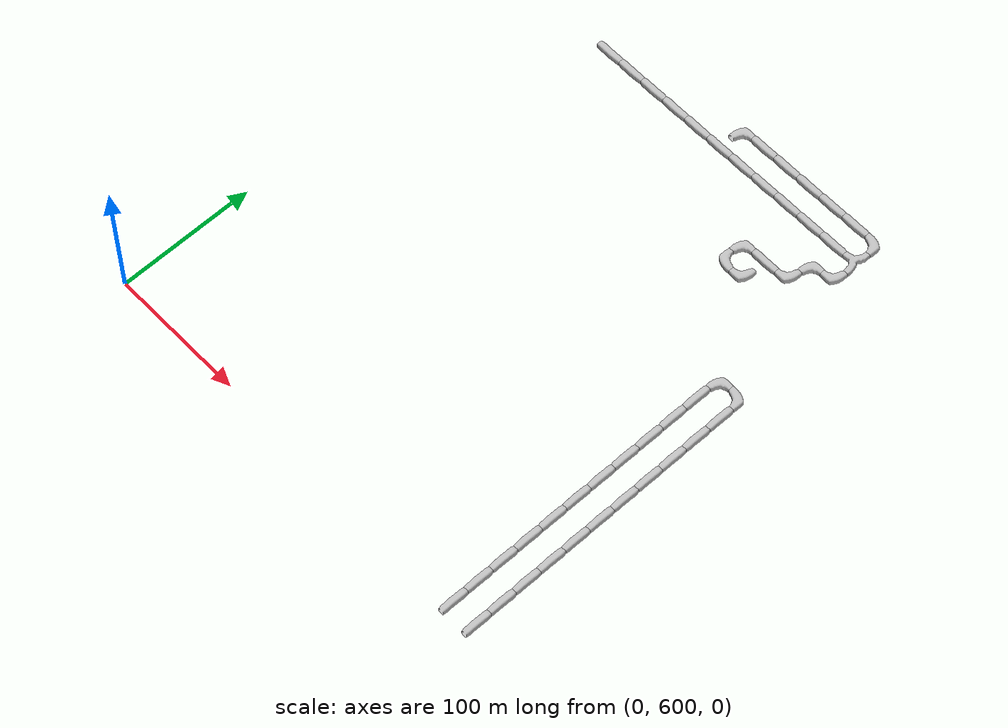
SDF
<sdf version="1.6">
 <world name="cave_16000_2">
  <include>
   <static>true</static>
   <name>cave_15_30</name>
   <pose>300 600 0 0 0 0.0</pose>
   <uri>model://cave_straight_20m</uri>
  </include>
  <include>
   <static>true</static>
   <name>cave_15_31</name>
   <pose>300 620 0 0 0 0.0</pose>
   <uri>model://cave_straight_20m</uri>
  </include>
  <include>
   <static>true</static>
   <name>cave_15_32</name>
   <pose>300 640 0 0 0 0.0</pose>
   <uri>model://cave_straight_20m</uri>
  </include>
  <include>
   <static>true</static>
   <name>cave_15_33</name>
   <pose>300 660 0 0 0 0.0</pose>
   <uri>model://cave_straight_20m</uri>
  </include>
  <include>
   <static>true</static>
   <name>cave_15_34</name>
   <pose>300 680 0 0 0 0.0</pose>
   <uri>model://cave_straight_20m</uri>
  </include>
  <include>
   <static>true</static>
   <name>cave_15_35</name>
   <pose>300 700 0 0 0 0.0</pose>
   <uri>model://cave_straight_20m</uri>
  </include>
  <include>
   <static>true</static>
   <name>cave_15_36</name>
   <pose>300 720 0 0 0 0.0</pose>
   <uri>model://cave_straight_20m</uri>
  </include>
  <include>
   <static>true</static>
   <name>cave_15_37</name>
   <pose>300 740 0 0 0 0.0</pose>
   <uri>model://cave_straight_20m</uri>
  </include>
  <include>
   <static>true</static>
   <name>cave_15_38</name>
   <pose>300 760 0 0 0 0.0</pose>
   <uri>model://cave_straight_20m</uri>
  </include>
  <include>
   <static>true</static>
   <name>cave_15_39</name>
   <pose>300 780 0 0 0 0.0</pose>
   <uri>model://cave_straight_20m</uri>
  </include>
  <include>
   <static>true</static>
   <name>cave_15_40</name>
   <pose>300 800 0 0 0 0.0</pose>
   <uri>model://cave_straight_20m</uri>
  </include>
  <include>
   <static>true</static>
   <name>cave_15_41</name>
   <pose>300 820 0 0 0 -1.5707963267948966</pose>
   <uri>model://cave_L_20m</uri>
  </include>
  <include>
   <static>true</static>
   <name>cave_16_41</name>
   <pose>320 820 0 0 0 3.141592653589793</pose>
   <uri>model://cave_L_20m</uri>
  </include>
  <include>
   <static>true</static>
   <name>cave_16_40</name>
   <pose>320 800 0 0 0 0.0</pose>
   <uri>model://cave_straight_20m</uri>
  </include>
  <include>
   <static>true</static>
   <name>cave_16_39</name>
   <pose>320 780 0 0 0 0.0</pose>
   <uri>model://cave_straight_20m</uri>
  </include>
  <include>
   <static>true</static>
   <name>cave_16_38</name>
   <pose>320 760 0 0 0 0.0</pose>
   <uri>model://cave_straight_20m</uri>
  </include>
  <include>
   <static>true</static>
   <name>cave_16_37</name>
   <pose>320 740 0 0 0 0.0</pose>
   <uri>model://cave_straight_20m</uri>
  </include>
  <include>
   <static>true</static>
   <name>cave_16_36</name>
   <pose>320 720 0 0 0 0.0</pose>
   <uri>model://cave_straight_20m</uri>
  </include>
  <include>
   <static>true</static>
   <name>cave_16_35</name>
   <pose>320 700 0 0 0 0.0</pose>
   <uri>model://cave_straight_20m</uri>
  </include>
  <include>
   <static>true</static>
   <name>cave_16_34</name>
   <pose>320 680 0 0 0 0.0</pose>
   <uri>model://cave_straight_20m</uri>
  </include>
  <include>
   <static>true</static>
   <name>cave_16_33</name>
   <pose>320 660 0 0 0 0.0</pose>
   <uri>model://cave_straight_20m</uri>
  </include>
  <include>
   <static>true</static>
   <name>cave_16_32</name>
   <pose>320 640 0 0 0 0.0</pose>
   <uri>model://cave_straight_20m</uri>
  </include>
  <include>
   <static>true</static>
   <name>cave_16_31</name>
   <pose>320 620 0 0 0 0.0</pose>
   <uri>model://cave_straight_20m</uri>
  </include>
  <include>
   <static>true</static>
   <name>cave_16_30</name>
   <pose>320 600 0 0 0 0.0</pose>
   <uri>model://cave_straight_20m</uri>
  </include>
  <include>
   <static>true</static>
   <name>cave_4_47</name>
   <pose>80 940 0 0 0 1.5707963267948966</pose>
   <uri>model://cave_straight_20m</uri>
  </include>
  <include>
   <static>true</static>
   <name>cave_5_47</name>
   <pose>100 940 0 0 0 1.5707963267948966</pose>
   <uri>model://cave_straight_20m</uri>
  </include>
  <include>
   <static>true</static>
   <name>cave_6_47</name>
   <pose>120 940 0 0 0 1.5707963267948966</pose>
   <uri>model://cave_straight_20m</uri>
  </include>
  <include>
   <static>true</static>
   <name>cave_7_47</name>
   <pose>140 940 0 0 0 1.5707963267948966</pose>
   <uri>model://cave_straight_20m</uri>
  </include>
  <include>
   <static>true</static>
   <name>cave_8_47</name>
   <pose>160 940 0 0 0 1.5707963267948966</pose>
   <uri>model://cave_straight_20m</uri>
  </include>
  <include>
   <static>true</static>
   <name>cave_9_47</name>
   <pose>180 940 0 0 0 1.5707963267948966</pose>
   <uri>model://cave_straight_20m</uri>
  </include>
  <include>
   <static>true</static>
   <name>cave_10_47</name>
   <pose>200 940 0 0 0 1.5707963267948966</pose>
   <uri>model://cave_straight_20m</uri>
  </include>
  <include>
   <static>true</static>
   <name>cave_11_47</name>
   <pose>220 940 0 0 0 1.5707963267948966</pose>
   <uri>model://cave_straight_20m</uri>
  </include>
  <include>
   <static>true</static>
   <name>cave_12_47</name>
   <pose>240 940 0 0 0 1.5707963267948966</pose>
   <uri>model://cave_straight_20m</uri>
  </include>
  <include>
   <static>true</static>
   <name>cave_13_47</name>
   <pose>260 940 0 0 0 1.5707963267948966</pose>
   <uri>model://cave_straight_20m</uri>
  </include>
  <include>
   <static>true</static>
   <name>cave_14_47</name>
   <pose>280 940 0 0 0 1.5707963267948966</pose>
   <uri>model://cave_straight_20m</uri>
  </include>
  <include>
   <static>true</static>
   <name>cave_15_47</name>
   <pose>300 940 0 0 0 1.5707963267948966</pose>
   <uri>model://cave_3way_20m</uri>
  </include>
  <include>
   <static>true</static>
   <name>cave_15_46</name>
   <pose>300 920 0 0 0 1.5707963267948966</pose>
   <uri>model://cave_L_20m</uri>
  </include>
  <include>
   <static>true</static>
   <name>cave_14_46</name>
   <pose>280 920 0 0 0 -1.5707963267948966</pose>
   <uri>model://cave_L_20m</uri>
  </include>
  <include>
   <static>true</static>
   <name>cave_14_45</name>
   <pose>280 900 0 0 0 1.5707963267948966</pose>
   <uri>model://cave_L_20m</uri>
  </include>
  <include>
   <static>true</static>
   <name>cave_13_45</name>
   <pose>260 900 0 0 0 1.5707963267948966</pose>
   <uri>model://cave_straight_20m</uri>
  </include>
  <include>
   <static>true</static>
   <name>cave_12_45</name>
   <pose>240 900 0 0 0 -1.5707963267948966</pose>
   <uri>model://cave_L_20m</uri>
  </include>
  <include>
   <static>true</static>
   <name>cave_12_44</name>
   <pose>240 880 0 0 0 0.0</pose>
   <uri>model://cave_L_20m</uri>
  </include>
  <include>
   <static>true</static>
   <name>cave_13_44</name>
   <pose>260 880 0 0 0 1.5707963267948966</pose>
   <uri>model://cave_L_20m</uri>
  </include>
  <include>
   <static>true</static>
   <name>cave_15_48</name>
   <pose>300 960 0 0 0 3.141592653589793</pose>
   <uri>model://cave_L_20m</uri>
  </include>
  <include>
   <static>true</static>
   <name>cave_14_48</name>
   <pose>280 960 0 0 0 1.5707963267948966</pose>
   <uri>model://cave_straight_20m</uri>
  </include>
  <include>
   <static>true</static>
   <name>cave_13_48</name>
   <pose>260 960 0 0 0 1.5707963267948966</pose>
   <uri>model://cave_straight_20m</uri>
  </include>
  <include>
   <static>true</static>
   <name>cave_12_48</name>
   <pose>240 960 0 0 0 1.5707963267948966</pose>
   <uri>model://cave_straight_20m</uri>
  </include>
  <include>
   <static>true</static>
   <name>cave_11_48</name>
   <pose>220 960 0 0 0 1.5707963267948966</pose>
   <uri>model://cave_straight_20m</uri>
  </include>
  <include>
   <static>true</static>
   <name>cave_10_48</name>
   <pose>200 960 0 0 0 1.5707963267948966</pose>
   <uri>model://cave_straight_20m</uri>
  </include>
  <include>
   <static>true</static>
   <name>cave_9_48</name>
   <pose>180 960 0 0 0 -1.5707963267948966</pose>
   <uri>model://cave_L_20m</uri>
  </include>
 </world>
</sdf>
